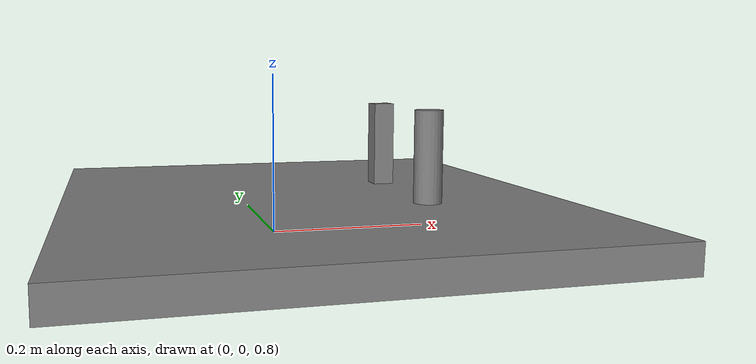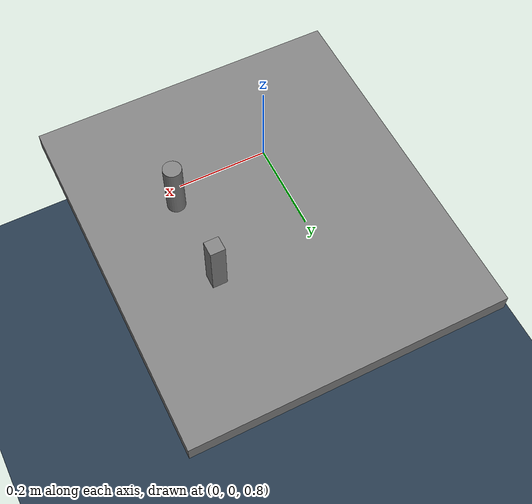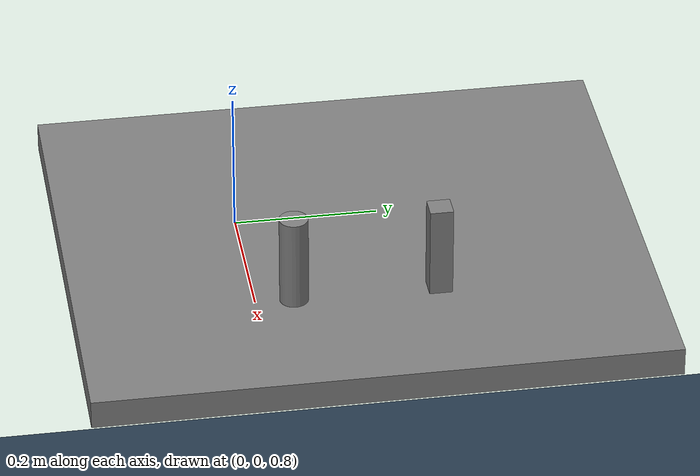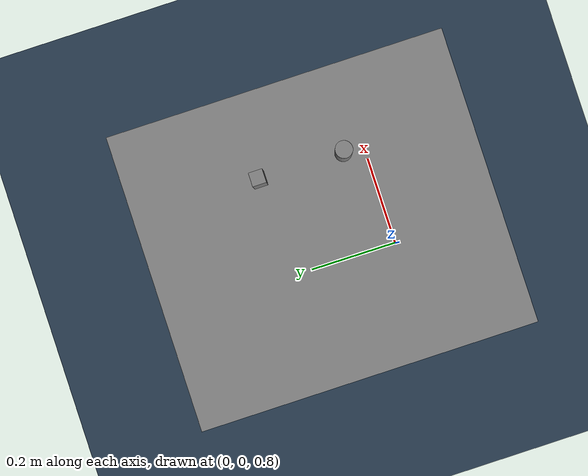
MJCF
<mujoco model="pegs_arena">
  <asset>
    <texture builtin="gradient" height="256" rgb1=".9 .9 1." rgb2=".2 .3 .4" type="skybox" width="256"/>
    <texture builtin="checker" height="512" name="texplane" rgb1=".2 .3 .4" rgb2=".1 0.15 0.2" type="2d" width="512"/>
    <texture file="../textures/light-wood.png" type="2d" name="tex-light-wood"/>
    <texture file="../textures/dark-wood.png" type="2d" name="tex-dark-wood"/>
    <material name="light-wood" reflectance="0.5" texrepeat="15 15" texture="tex-light-wood" texuniform="true"/>
    <material name="dark-wood" reflectance="0.5" texrepeat="5 5" texture="tex-dark-wood" texuniform="true"/>
    <material name="floorplane" reflectance="0.5" texrepeat="1 1" texture="texplane" texuniform="true"/>
  </asset>
  <worldbody>
    <geom condim="3" material="floorplane" name="floor" pos="0 0 0" size="3 3 .125" type="plane"/>
    <body name="bin1" pos="0.08 0.15 0.8">
      <geom pos="0 0 0" size="0.35 0.4 0.02" type="box" friction="1 0.005 0.0001"/>
      <geom pos="0 0 0" material="light-wood" size="0.35 0.4 0.02" type="box" conaffinity="0" contype="0" group="1"/>
    </body>
    <body name="peg1" pos="0.23 0.25 0.85">
      <geom pos="0 0 0" size="0.016 0.016 0.1" type="box" friction="1 0.005 0.0001"/>
      <geom pos="0 0 0" rgba="0.3 0.3 1 1" size="0.016 0.016 0.1" type="box" conaffinity="0" contype="0" group="1"/>
    </body>
    <body name="peg2" pos="0.23 0.05 0.85">
      <geom pos="0 0 0" size="0.02 0.1" type="cylinder" friction="1 0.005 0.0001"/>
      <geom pos="0 0 0" rgba="1 0.3 0.3 1" size="0.02 0.1" type="cylinder" conaffinity="0" contype="0" group="1"/>
    </body>

    <light diffuse=".8 .8 .8" dir="0 -.15 -1" directional="false" pos="1 1 4.0" specular="0.3 0.3 0.3" castshadow="false"/>
    <light diffuse=".8 .8 .8" dir="0 -.15 -1" directional="false" pos="-3. -3. 4.0" specular="0.3 0.3 0.3" castshadow="false"/>
    <!-- front view -->
    <camera mode="fixed" name="frontview" pos="1.6 0.15 1.45" quat="0.56 0.43 0.43 0.56"/>
    <!-- bird view -->
    <camera mode="fixed" name="birdview" pos="-0.2 0.15 3.0" quat="0.7071 0 0 0.7071"/>
    <!-- agent view -->
    <camera mode="fixed" name="agentview" pos="0.8 0.15 1.65" quat="0.653 0.271 0.271 0.653"/>
  </worldbody>
</mujoco>
